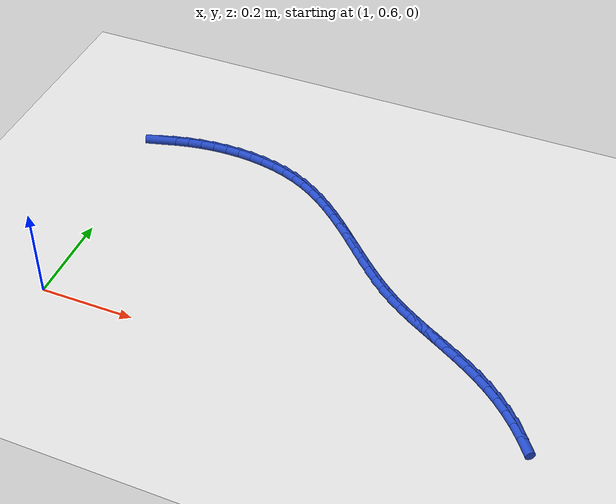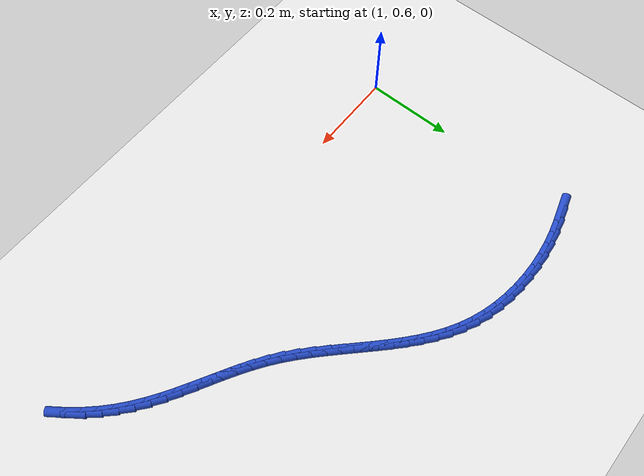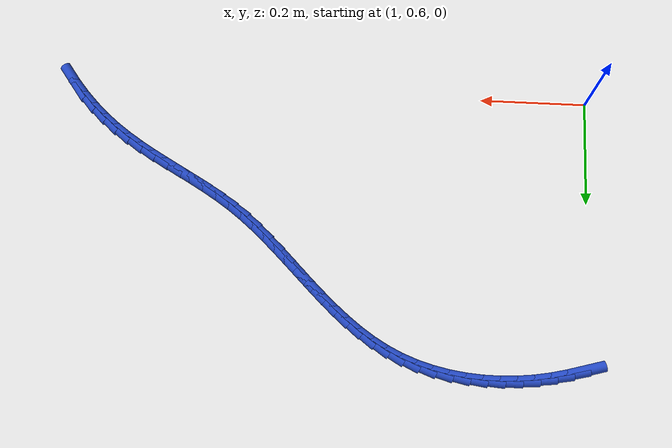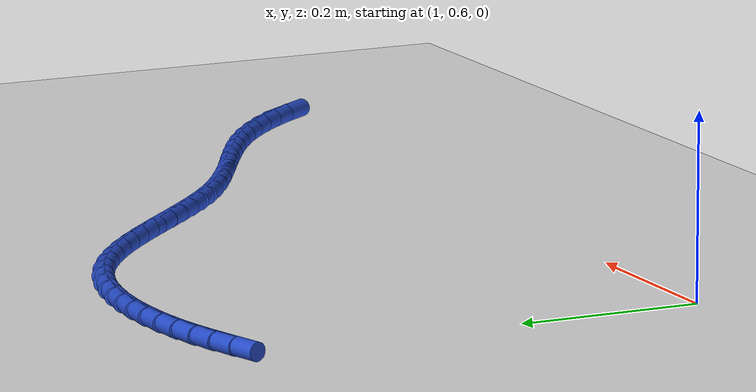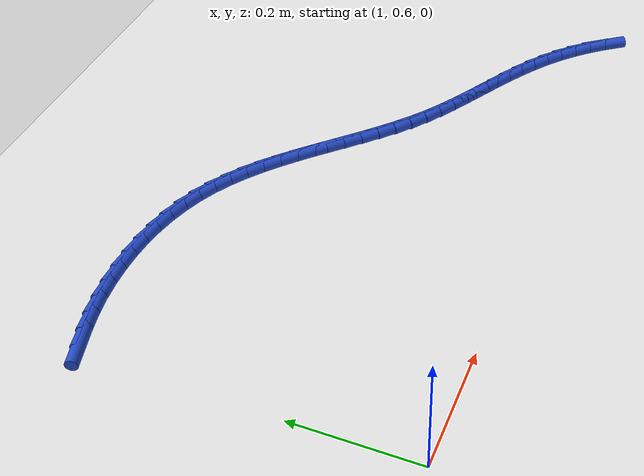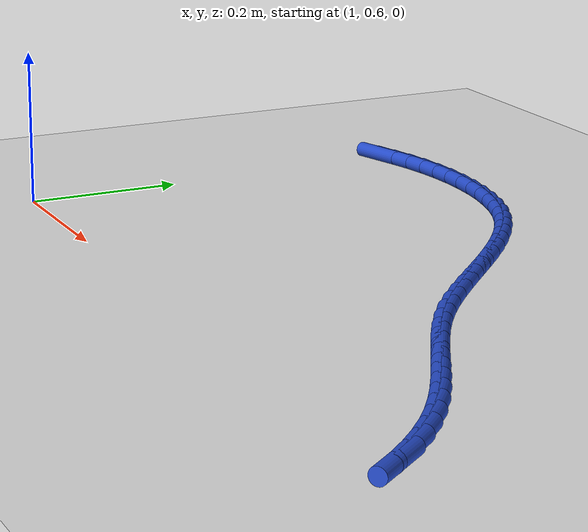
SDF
<sdf version="1.6">
 <world name="default">
  <model name="ground_plane">
   <static>1</static>
   <link name="link">
    <collision name="collision">
     <geometry><plane><normal>0 0 1</normal><size>100 100</size></plane></geometry>
     <surface><friction><ode><mu>100</mu><mu2>50</mu2></ode></friction></surface>
    </collision>
    <visual name="visual">
     <cast_shadows>0</cast_shadows>
     <geometry><plane><normal>0 0 1</normal><size>100 100</size></plane></geometry>
     <material>
      <script><uri>file://media/materials/scripts/gazebo.material</uri><name>Gazebo/WhiteGlow</name></script>
     </material>
    </visual>
   </link>
  </model>
  <model name="line">
   <link name="link_56">
    <pose>1.0110708039889853 1.1142095309774813 0.01 0 1.57 0.2744567494896787</pose>
    <collision name="collision">
     <geometry><cylinder><radius>0.01</radius><length>0.08</length></cylinder></geometry>
    </collision>
    <visual name="visual">
     <material>
      <script><name>Gazebo/Blue</name><uri>file://media/materials/scripts/gazebo.material</uri></script>
     </material>
     <geometry><cylinder><radius>0.01</radius><length>0.08</length></cylinder></geometry>
    </visual>
   </link>
   <link name="link_57">
    <pose>1.0399708472483955 1.122346690961228 0.01 0 1.57 0.23137815917745772</pose>
    <collision name="collision">
     <geometry><cylinder><radius>0.01</radius><length>0.08</length></cylinder></geometry>
    </collision>
    <visual name="visual">
     <material>
      <script><name>Gazebo/Blue</name><uri>file://media/materials/scripts/gazebo.material</uri></script>
     </material>
     <geometry><cylinder><radius>0.01</radius><length>0.08</length></cylinder></geometry>
    </visual>
   </link>
   <link name="link_58">
    <pose>1.069390921591184 1.1292779882993433 0.01 0 1.57 0.17248066126663625</pose>
    <collision name="collision">
     <geometry><cylinder><radius>0.01</radius><length>0.08</length></cylinder></geometry>
    </collision>
    <visual name="visual">
     <material>
      <script><name>Gazebo/Blue</name><uri>file://media/materials/scripts/gazebo.material</uri></script>
     </material>
     <geometry><cylinder><radius>0.01</radius><length>0.08</length></cylinder></geometry>
    </visual>
   </link>
   <link name="link_59">
    <pose>1.0995034604607472 1.1345239440414097 0.01 0 1.57 0.1107858189988246</pose>
    <collision name="collision">
     <geometry><cylinder><radius>0.01</radius><length>0.08</length></cylinder></geometry>
    </collision>
    <visual name="visual">
     <material>
      <script><name>Gazebo/Blue</name><uri>file://media/materials/scripts/gazebo.material</uri></script>
     </material>
     <geometry><cylinder><radius>0.01</radius><length>0.08</length></cylinder></geometry>
    </visual>
   </link>
   <link name="link_60">
    <pose>1.1301709068327124 1.1379354305951885 0.01 0 1.57 0.04921476953226253</pose>
    <collision name="collision">
     <geometry><cylinder><radius>0.01</radius><length>0.08</length></cylinder></geometry>
    </collision>
    <visual name="visual">
     <material>
      <script><name>Gazebo/Blue</name><uri>file://media/materials/scripts/gazebo.material</uri></script>
     </material>
     <geometry><cylinder><radius>0.01</radius><length>0.08</length></cylinder></geometry>
    </visual>
   </link>
   <link name="link_61">
    <pose>1.1611631624159011 1.1394619399595434 0.01 0 1.57 -0.013154551290990045</pose>
    <collision name="collision">
     <geometry><cylinder><radius>0.01</radius><length>0.08</length></cylinder></geometry>
    </collision>
    <visual name="visual">
     <material>
      <script><name>Gazebo/Blue</name><uri>file://media/materials/scripts/gazebo.material</uri></script>
     </material>
     <geometry><cylinder><radius>0.01</radius><length>0.08</length></cylinder></geometry>
    </visual>
   </link>
   <link name="link_62">
    <pose>1.1922501126330498 1.1390529814891321 0.01 0 1.57 -0.07722249879751826</pose>
    <collision name="collision">
     <geometry><cylinder><radius>0.01</radius><length>0.08</length></cylinder></geometry>
    </collision>
    <visual name="visual">
     <material>
      <script><name>Gazebo/Blue</name><uri>file://media/materials/scripts/gazebo.material</uri></script>
     </material>
     <geometry><cylinder><radius>0.01</radius><length>0.08</length></cylinder></geometry>
    </visual>
   </link>
   <link name="link_63">
    <pose>1.223201642906896 1.1366580645386113 0.01 0 1.57 -0.14388103662224003</pose>
    <collision name="collision">
     <geometry><cylinder><radius>0.01</radius><length>0.08</length></cylinder></geometry>
    </collision>
    <visual name="visual">
     <material>
      <script><name>Gazebo/Blue</name><uri>file://media/materials/scripts/gazebo.material</uri></script>
     </material>
     <geometry><cylinder><radius>0.01</radius><length>0.08</length></cylinder></geometry>
    </visual>
   </link>
   <link name="link_64">
    <pose>1.2537876386601752 1.1322266984626381 0.01 0 1.57 -0.21401818619725188</pose>
    <collision name="collision">
     <geometry><cylinder><radius>0.01</radius><length>0.08</length></cylinder></geometry>
    </collision>
    <visual name="visual">
     <material>
      <script><name>Gazebo/Blue</name><uri>file://media/materials/scripts/gazebo.material</uri></script>
     </material>
     <geometry><cylinder><radius>0.01</radius><length>0.08</length></cylinder></geometry>
    </visual>
   </link>
   <link name="link_65">
    <pose>1.2837779853156241 1.125708392615869 0.01 0 1.57 -0.2885086044313413</pose>
    <collision name="collision">
     <geometry><cylinder><radius>0.01</radius><length>0.08</length></cylinder></geometry>
    </collision>
    <visual name="visual">
     <material>
      <script><name>Gazebo/Blue</name><uri>file://media/materials/scripts/gazebo.material</uri></script>
     </material>
     <geometry><cylinder><radius>0.01</radius><length>0.08</length></cylinder></geometry>
    </visual>
   </link>
   <link name="link_66">
    <pose>1.3129425682959803 1.1170526563529617 0.01 0 1.57 -0.3681842953426652</pose>
    <collision name="collision">
     <geometry><cylinder><radius>0.01</radius><length>0.08</length></cylinder></geometry>
    </collision>
    <visual name="visual">
     <material>
      <script><name>Gazebo/Blue</name><uri>file://media/materials/scripts/gazebo.material</uri></script>
     </material>
     <geometry><cylinder><radius>0.01</radius><length>0.08</length></cylinder></geometry>
    </visual>
   </link>
   <link name="link_67">
    <pose>1.3410512730239799 1.1062089990285733 0.01 0 1.57 -0.453066055847872</pose>
    <collision name="collision">
     <geometry><cylinder><radius>0.01</radius><length>0.08</length></cylinder></geometry>
    </collision>
    <visual name="visual">
     <material>
      <script><name>Gazebo/Blue</name><uri>file://media/materials/scripts/gazebo.material</uri></script>
     </material>
     <geometry><cylinder><radius>0.01</radius><length>0.08</length></cylinder></geometry>
    </visual>
   </link>
   <link name="link_68">
    <pose>1.3678921469280785 1.093141729395896 0.01 0 1.57 -0.5343116861021012</pose>
    <collision name="collision">
     <geometry><cylinder><radius>0.01</radius><length>0.08</length></cylinder></geometry>
    </collision>
    <visual name="visual">
     <material>
      <script><name>Gazebo/Blue</name><uri>file://media/materials/scripts/gazebo.material</uri></script>
     </material>
     <geometry><cylinder><radius>0.01</radius><length>0.08</length></cylinder></geometry>
    </visual>
   </link>
   <link name="link_69">
    <pose>1.3934806100406614 1.0780004318783223 0.01 0 1.57 -0.6048197882652402</pose>
    <collision name="collision">
     <geometry><cylinder><radius>0.01</radius><length>0.08</length></cylinder></geometry>
    </collision>
    <visual name="visual">
     <material>
      <script><name>Gazebo/Blue</name><uri>file://media/materials/scripts/gazebo.material</uri></script>
     </material>
     <geometry><cylinder><radius>0.01</radius><length>0.08</length></cylinder></geometry>
    </visual>
   </link>
   <link name="link_70">
    <pose>1.4179868727710268 1.061060822589372 0.01 0 1.57 -0.6638458286695419</pose>
    <collision name="collision">
     <geometry><cylinder><radius>0.01</radius><length>0.08</length></cylinder></geometry>
    </collision>
    <visual name="visual">
     <material>
      <script><name>Gazebo/Blue</name><uri>file://media/materials/scripts/gazebo.material</uri></script>
     </material>
     <geometry><cylinder><radius>0.01</radius><length>0.08</length></cylinder></geometry>
    </visual>
   </link>
   <link name="link_71">
    <pose>1.4415841148845832 1.0426010372368097 0.01 0 1.57 -0.7113015473168275</pose>
    <collision name="collision">
     <geometry><cylinder><radius>0.01</radius><length>0.08</length></cylinder></geometry>
    </collision>
    <visual name="visual">
     <material>
      <script><name>Gazebo/Blue</name><uri>file://media/materials/scripts/gazebo.material</uri></script>
     </material>
     <geometry><cylinder><radius>0.01</radius><length>0.08</length></cylinder></geometry>
    </visual>
   </link>
   <link name="link_72">
    <pose>1.4644455161467396 1.022899211528398 0.01 0 1.57 -0.7474080727093959</pose>
    <collision name="collision">
     <geometry><cylinder><radius>0.01</radius><length>0.08</length></cylinder></geometry>
    </collision>
    <visual name="visual">
     <material>
      <script><name>Gazebo/Blue</name><uri>file://media/materials/scripts/gazebo.material</uri></script>
     </material>
     <geometry><cylinder><radius>0.01</radius><length>0.08</length></cylinder></geometry>
    </visual>
   </link>
   <link name="link_73">
    <pose>1.4867442563229045 1.0022334811719014 0.01 0 1.57 -0.7725059099912257</pose>
    <collision name="collision">
     <geometry><cylinder><radius>0.01</radius><length>0.08</length></cylinder></geometry>
    </collision>
    <visual name="visual">
     <material>
      <script><name>Gazebo/Blue</name><uri>file://media/materials/scripts/gazebo.material</uri></script>
     </material>
     <geometry><cylinder><radius>0.01</radius><length>0.08</length></cylinder></geometry>
    </visual>
   </link>
   <link name="link_74">
    <pose>1.508653515178487 0.9808819818750829 0.01 0 1.57 -0.7869211091997198</pose>
    <collision name="collision">
     <geometry><cylinder><radius>0.01</radius><length>0.08</length></cylinder></geometry>
    </collision>
    <visual name="visual">
     <material>
      <script><name>Gazebo/Blue</name><uri>file://media/materials/scripts/gazebo.material</uri></script>
     </material>
     <geometry><cylinder><radius>0.01</radius><length>0.08</length></cylinder></geometry>
    </visual>
   </link>
   <link name="link_75">
    <pose>1.5303464724788955 0.9591228493457067 0.01 0 1.57 -0.7908827882234081</pose>
    <collision name="collision">
     <geometry><cylinder><radius>0.01</radius><length>0.08</length></cylinder></geometry>
    </collision>
    <visual name="visual">
     <material>
      <script><name>Gazebo/Blue</name><uri>file://media/materials/scripts/gazebo.material</uri></script>
     </material>
     <geometry><cylinder><radius>0.01</radius><length>0.08</length></cylinder></geometry>
    </visual>
   </link>
   <link name="link_76">
    <pose>1.5519963079895387 0.9372342192915362 0.01 0 1.57 -0.7844813042748274</pose>
    <collision name="collision">
     <geometry><cylinder><radius>0.01</radius><length>0.08</length></cylinder></geometry>
    </collision>
    <visual name="visual">
     <material>
      <script><name>Gazebo/Blue</name><uri>file://media/materials/scripts/gazebo.material</uri></script>
     </material>
     <geometry><cylinder><radius>0.01</radius><length>0.08</length></cylinder></geometry>
    </visual>
   </link>
   <link name="link_77">
    <pose>1.573776201475826 0.915494227420335 0.01 0 1.57 -0.7676585955002688</pose>
    <collision name="collision">
     <geometry><cylinder><radius>0.01</radius><length>0.08</length></cylinder></geometry>
    </collision>
    <visual name="visual">
     <material>
      <script><name>Gazebo/Blue</name><uri>file://media/materials/scripts/gazebo.material</uri></script>
     </material>
     <geometry><cylinder><radius>0.01</radius><length>0.08</length></cylinder></geometry>
    </visual>
   </link>
   <link name="link_78">
    <pose>1.5958593327031658 0.8941810094398669 0.01 0 1.57 -0.7402276774006278</pose>
    <collision name="collision">
     <geometry><cylinder><radius>0.01</radius><length>0.08</length></cylinder></geometry>
    </collision>
    <visual name="visual">
     <material>
      <script><name>Gazebo/Blue</name><uri>file://media/materials/scripts/gazebo.material</uri></script>
     </material>
     <geometry><cylinder><radius>0.01</radius><length>0.08</length></cylinder></geometry>
    </visual>
   </link>
   <link name="link_79">
    <pose>1.6184188814369667 0.8735727010578953 0.01 0 1.57 -0.7019242670209791</pose>
    <collision name="collision">
     <geometry><cylinder><radius>0.01</radius><length>0.08</length></cylinder></geometry>
    </collision>
    <visual name="visual">
     <material>
      <script><name>Gazebo/Blue</name><uri>file://media/materials/scripts/gazebo.material</uri></script>
     </material>
     <geometry><cylinder><radius>0.01</radius><length>0.08</length></cylinder></geometry>
    </visual>
   </link>
   <link name="link_80">
    <pose>1.6416280274426374 0.8539474379821844 0.01 0 1.57 -0.6526443364775731</pose>
    <collision name="collision">
     <geometry><cylinder><radius>0.01</radius><length>0.08</length></cylinder></geometry>
    </collision>
    <visual name="visual">
     <material>
      <script><name>Gazebo/Blue</name><uri>file://media/materials/scripts/gazebo.material</uri></script>
     </material>
     <geometry><cylinder><radius>0.01</radius><length>0.08</length></cylinder></geometry>
    </visual>
   </link>
   <link name="link_81">
    <pose>1.6656575884612193 0.8355795938019851 0.01 0 1.57 -0.6010693907745103</pose>
    <collision name="collision">
     <geometry><cylinder><radius>0.01</radius><length>0.08</length></cylinder></geometry>
    </collision>
    <visual name="visual">
     <material>
      <script><name>Gazebo/Blue</name><uri>file://media/materials/scripts/gazebo.material</uri></script>
     </material>
     <geometry><cylinder><radius>0.01</radius><length>0.08</length></cylinder></geometry>
    </visual>
   </link>
   <link name="link_82">
    <pose>1.6905375399271803 0.8185192152723338 0.01 0 1.57 -0.561008330749352</pose>
    <collision name="collision">
     <geometry><cylinder><radius>0.01</radius><length>0.08</length></cylinder></geometry>
    </collision>
    <visual name="visual">
     <material>
      <script><name>Gazebo/Blue</name><uri>file://media/materials/scripts/gazebo.material</uri></script>
     </material>
     <geometry><cylinder><radius>0.01</radius><length>0.08</length></cylinder></geometry>
    </visual>
   </link>
   <link name="link_83">
    <pose>1.7160800557192346 0.8024694453330744 0.01 0 1.57 -0.5337928698314824</pose>
    <collision name="collision">
     <geometry><cylinder><radius>0.01</radius><length>0.08</length></cylinder></geometry>
    </collision>
    <visual name="visual">
     <material>
      <script><name>Gazebo/Blue</name><uri>file://media/materials/scripts/gazebo.material</uri></script>
     </material>
     <geometry><cylinder><radius>0.01</radius><length>0.08</length></cylinder></geometry>
    </visual>
   </link>
   <link name="link_84">
    <pose>1.7420786328831248 0.7871036793651315 0.01 0 1.57 -0.5194169591818111</pose>
    <collision name="collision">
     <geometry><cylinder><radius>0.01</radius><length>0.08</length></cylinder></geometry>
    </collision>
    <visual name="visual">
     <material>
      <script><name>Gazebo/Blue</name><uri>file://media/materials/scripts/gazebo.material</uri></script>
     </material>
     <geometry><cylinder><radius>0.01</radius><length>0.08</length></cylinder></geometry>
    </visual>
   </link>
   <link name="link_85">
    <pose>1.768326768464595 0.7720953127494293 0.01 0 1.57 -0.5178271446682553</pose>
    <collision name="collision">
     <geometry><cylinder><radius>0.01</radius><length>0.08</length></cylinder></geometry>
    </collision>
    <visual name="visual">
     <material>
      <script><name>Gazebo/Blue</name><uri>file://media/materials/scripts/gazebo.material</uri></script>
     </material>
     <geometry><cylinder><radius>0.01</radius><length>0.08</length></cylinder></geometry>
    </visual>
   </link>
   <link name="link_86">
    <pose>1.7946179595093887 0.7571177408668923 0.01 0 1.57 -0.528993414687814</pose>
    <collision name="collision">
     <geometry><cylinder><radius>0.01</radius><length>0.08</length></cylinder></geometry>
    </collision>
    <visual name="visual">
     <material>
      <script><name>Gazebo/Blue</name><uri>file://media/materials/scripts/gazebo.material</uri></script>
     </material>
     <geometry><cylinder><radius>0.01</radius><length>0.08</length></cylinder></geometry>
    </visual>
   </link>
   <link name="link_87">
    <pose>1.82074570306325 0.7418443590984453 0.01 0 1.57 -0.55291685279952</pose>
    <collision name="collision">
     <geometry><cylinder><radius>0.01</radius><length>0.08</length></cylinder></geometry>
    </collision>
    <visual name="visual">
     <material>
      <script><name>Gazebo/Blue</name><uri>file://media/materials/scripts/gazebo.material</uri></script>
     </material>
     <geometry><cylinder><radius>0.01</radius><length>0.08</length></cylinder></geometry>
    </visual>
   </link>
   <link name="link_88">
    <pose>1.8465034961719222 0.7259485628250117 0.01 0 1.57 -0.5895750735014523</pose>
    <collision name="collision">
     <geometry><cylinder><radius>0.01</radius><length>0.08</length></cylinder></geometry>
    </collision>
    <visual name="visual">
     <material>
      <script><name>Gazebo/Blue</name><uri>file://media/materials/scripts/gazebo.material</uri></script>
     </material>
     <geometry><cylinder><radius>0.01</radius><length>0.08</length></cylinder></geometry>
    </visual>
   </link>
   <link name="link_89">
    <pose>1.8716848358811493 0.7091037474275169 0.01 0 1.57 -0.63880637046228</pose>
    <collision name="collision">
     <geometry><cylinder><radius>0.01</radius><length>0.08</length></cylinder></geometry>
    </collision>
    <visual name="visual">
     <material>
      <script><name>Gazebo/Blue</name><uri>file://media/materials/scripts/gazebo.material</uri></script>
     </material>
     <geometry><cylinder><radius>0.01</radius><length>0.08</length></cylinder></geometry>
    </visual>
   </link>
   <link name="link_90">
    <pose>1.8960832192366746 0.6909833082868846 0.01 0 1.57 -0.6989195693343871</pose>
    <collision name="collision">
     <geometry><cylinder><radius>0.01</radius><length>0.08</length></cylinder></geometry>
    </collision>
    <visual name="visual">
     <material>
      <script><name>Gazebo/Blue</name><uri>file://media/materials/scripts/gazebo.material</uri></script>
     </material>
     <geometry><cylinder><radius>0.01</radius><length>0.08</length></cylinder></geometry>
    </visual>
   </link>
   <link name="link_91">
    <pose>1.9195003742082433 0.671302521568884 0.01 0 1.57 -0.7611204965864987</pose>
    <collision name="collision">
     <geometry><cylinder><radius>0.01</radius><length>0.08</length></cylinder></geometry>
    </collision>
    <visual name="visual">
     <material>
      <script><name>Gazebo/Blue</name><uri>file://media/materials/scripts/gazebo.material</uri></script>
     </material>
     <geometry><cylinder><radius>0.01</radius><length>0.08</length></cylinder></geometry>
    </visual>
   </link>
   <link name="link_92">
    <pose>1.9417947380293747 0.6500652128748562 0.01 0 1.57 -0.8223087773774286</pose>
    <collision name="collision">
     <geometry><cylinder><radius>0.01</radius><length>0.08</length></cylinder></geometry>
    </collision>
    <visual name="visual">
     <material>
      <script><name>Gazebo/Blue</name><uri>file://media/materials/scripts/gazebo.material</uri></script>
     </material>
     <geometry><cylinder><radius>0.01</radius><length>0.08</length></cylinder></geometry>
    </visual>
   </link>
   <link name="link_93">
    <pose>1.9628486371799105 0.6273967616420388 0.01 0 1.57 -0.8830481360188036</pose>
    <collision name="collision">
     <geometry><cylinder><radius>0.01</radius><length>0.08</length></cylinder></geometry>
    </collision>
    <visual name="visual">
     <material>
      <script><name>Gazebo/Blue</name><uri>file://media/materials/scripts/gazebo.material</uri></script>
     </material>
     <geometry><cylinder><radius>0.01</radius><length>0.08</length></cylinder></geometry>
    </visual>
   </link>
   <link name="link_94">
    <pose>1.982544481697196 0.6034229724669702 0.01 0 1.57 -0.9439041321938983</pose>
    <collision name="collision">
     <geometry><cylinder><radius>0.01</radius><length>0.08</length></cylinder></geometry>
    </collision>
    <visual name="visual">
     <material>
      <script><name>Gazebo/Blue</name><uri>file://media/materials/scripts/gazebo.material</uri></script>
     </material>
     <geometry><cylinder><radius>0.01</radius><length>0.08</length></cylinder></geometry>
    </visual>
   </link>
  </model>
 </world>
</sdf>
